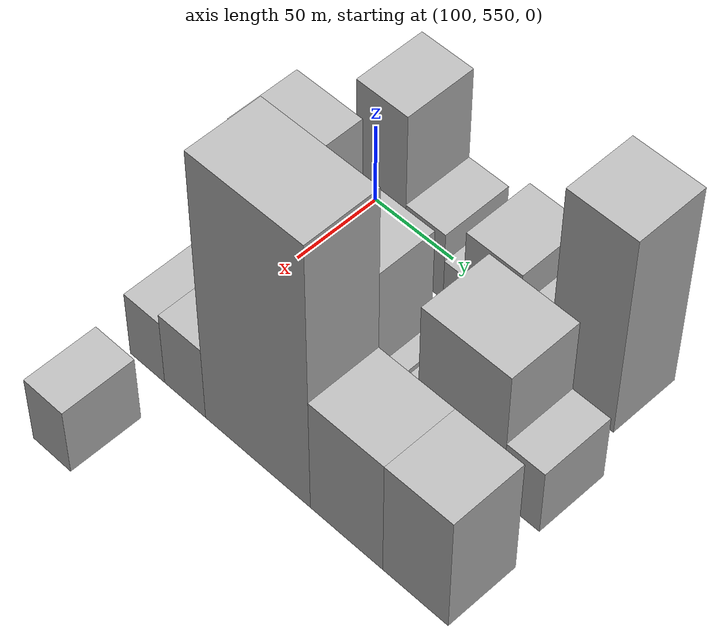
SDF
<sdf version="1.6">
 <world name="default">
  <model name="building_40">
   <static>1</static>
   <pose>100.0000 537.1029 0 0.000000 0.000000 0.000000</pose>
   <link name="link">
    <pose>0 0 7.50 0 0 0</pose>
    <collision name="collision"><geometry><box><size>40.0000 6.2136 15.0000</size></box></geometry></collision>
    <visual name="visual">
     <cast_shadows>0</cast_shadows>
     <geometry><box><size>40.0000 6.2136 15.0000</size></box></geometry>
     <material>
      <script>
       <uri>model://HANNAS_wall/materials/scripts</uri>
       <uri>model://HANNAS_wall/materials/textures</uri>
       <name>vrc/HANNAS_wall</name>
      </script>
     </material>
    </visual>
   </link>
  </model>
  <model name="building_41">
   <static>1</static>
   <pose>100.0000 551.9933 0 0.000000 0.000000 0.000000</pose>
   <link name="link">
    <pose>0 0 13.50 0 0 0</pose>
    <collision name="collision"><geometry><box><size>40.0000 11.5673 27.0000</size></box></geometry></collision>
    <visual name="visual">
     <cast_shadows>0</cast_shadows>
     <geometry><box><size>40.0000 11.5673 27.0000</size></box></geometry>
     <material>
      <script>
       <uri>model://HANNAS_wall/materials/scripts</uri>
       <uri>model://HANNAS_wall/materials/textures</uri>
       <name>vrc/HANNAS_wall</name>
      </script>
     </material>
    </visual>
   </link>
  </model>
  <model name="building_42">
   <static>1</static>
   <pose>100.0000 573.2846 0 0.000000 0.000000 0.000000</pose>
   <link name="link">
    <pose>0 0 51.00 0 0 0</pose>
    <collision name="collision"><geometry><box><size>40.0000 31.0153 102.0000</size></box></geometry></collision>
    <visual name="visual">
     <cast_shadows>0</cast_shadows>
     <geometry><box><size>40.0000 31.0153 102.0000</size></box></geometry>
     <material>
      <script>
       <uri>model://HANNAS_wall/materials/scripts</uri>
       <uri>model://HANNAS_wall/materials/textures</uri>
       <name>vrc/HANNAS_wall</name>
      </script>
     </material>
    </visual>
   </link>
  </model>
  <model name="building_43">
   <static>1</static>
   <pose>100.0000 600.9570 0 0.000000 0.000000 0.000000</pose>
   <link name="link">
    <pose>0 0 22.50 0 0 0</pose>
    <collision name="collision"><geometry><box><size>40.0000 24.3294 45.0000</size></box></geometry></collision>
    <visual name="visual">
     <cast_shadows>0</cast_shadows>
     <geometry><box><size>40.0000 24.3294 45.0000</size></box></geometry>
     <material>
      <script>
       <uri>model://HANNAS_wall/materials/scripts</uri>
       <uri>model://HANNAS_wall/materials/textures</uri>
       <name>vrc/HANNAS_wall</name>
      </script>
     </material>
    </visual>
   </link>
  </model>
  <model name="building_44">
   <static>1</static>
   <pose>100.0000 619.0629 0 0.000000 0.000000 0.000000</pose>
   <link name="link">
    <pose>0 0 13.50 0 0 0</pose>
    <collision name="collision"><geometry><box><size>40.0000 11.8824 27.0000</size></box></geometry></collision>
    <visual name="visual">
     <cast_shadows>0</cast_shadows>
     <geometry><box><size>40.0000 11.8824 27.0000</size></box></geometry>
     <material>
      <script>
       <uri>model://HANNAS_wall/materials/scripts</uri>
       <uri>model://HANNAS_wall/materials/textures</uri>
       <name>vrc/HANNAS_wall</name>
      </script>
     </material>
    </visual>
   </link>
  </model>
  <model name="building_45">
   <static>1</static>
   <pose>100.0000 641.6522 0 0.000000 0.000000 0.000000</pose>
   <link name="link">
    <pose>0 0 28.50 0 0 0</pose>
    <collision name="collision"><geometry><box><size>40.0000 33.2962 57.0000</size></box></geometry></collision>
    <visual name="visual">
     <cast_shadows>0</cast_shadows>
     <geometry><box><size>40.0000 33.2962 57.0000</size></box></geometry>
     <material>
      <script>
       <uri>model://HANNAS_wall/materials/scripts</uri>
       <uri>model://HANNAS_wall/materials/textures</uri>
       <name>vrc/HANNAS_wall</name>
      </script>
     </material>
    </visual>
   </link>
  </model>
  <model name="building_46">
   <static>1</static>
   <pose>100.0000 667.4496 0 0.000000 0.000000 0.000000</pose>
   <link name="link">
    <pose>0 0 18.00 0 0 0</pose>
    <collision name="collision"><geometry><box><size>40.0000 18.2986 36.0000</size></box></geometry></collision>
    <visual name="visual">
     <cast_shadows>0</cast_shadows>
     <geometry><box><size>40.0000 18.2986 36.0000</size></box></geometry>
     <material>
      <script>
       <uri>model://HANNAS_wall/materials/scripts</uri>
       <uri>model://HANNAS_wall/materials/textures</uri>
       <name>vrc/HANNAS_wall</name>
      </script>
     </material>
    </visual>
   </link>
  </model>
  <model name="building_47">
   <static>1</static>
   <pose>100.0000 696.1448 0 0.000000 0.000000 0.000000</pose>
   <link name="link">
    <pose>0 0 64.50 0 0 0</pose>
    <collision name="collision"><geometry><box><size>40.0000 39.0918 129.0000</size></box></geometry></collision>
    <visual name="visual">
     <cast_shadows>0</cast_shadows>
     <geometry><box><size>40.0000 39.0918 129.0000</size></box></geometry>
     <material>
      <script>
       <uri>model://HANNAS_wall/materials/scripts</uri>
       <uri>model://HANNAS_wall/materials/textures</uri>
       <name>vrc/HANNAS_wall</name>
      </script>
     </material>
    </visual>
   </link>
  </model>
  <model name="building_95">
   <static>1</static>
   <pose>160.0000 562.0030 0 0.000000 0.000000 0.000000</pose>
   <link name="link">
    <pose>0 0 55.50 0 0 0</pose>
    <collision name="collision"><geometry><box><size>40.0000 39.6270 111.0000</size></box></geometry></collision>
    <visual name="visual">
     <cast_shadows>0</cast_shadows>
     <geometry><box><size>40.0000 39.6270 111.0000</size></box></geometry>
     <material>
      <script>
       <uri>model://HANNAS_wall/materials/scripts</uri>
       <uri>model://HANNAS_wall/materials/textures</uri>
       <name>vrc/HANNAS_wall</name>
      </script>
     </material>
    </visual>
   </link>
  </model>
  <model name="building_96">
   <static>1</static>
   <pose>160.0000 603.4719 0 0.000000 0.000000 0.000000</pose>
   <link name="link">
    <pose>0 0 37.50 0 0 0</pose>
    <collision name="collision"><geometry><box><size>40.0000 43.3110 75.0000</size></box></geometry></collision>
    <visual name="visual">
     <cast_shadows>0</cast_shadows>
     <geometry><box><size>40.0000 43.3110 75.0000</size></box></geometry>
     <material>
      <script>
       <uri>model://HANNAS_wall/materials/scripts</uri>
       <uri>model://HANNAS_wall/materials/textures</uri>
       <name>vrc/HANNAS_wall</name>
      </script>
     </material>
    </visual>
   </link>
  </model>
  <model name="building_97">
   <static>1</static>
   <pose>160.0000 638.6097 0 0.000000 0.000000 0.000000</pose>
   <link name="link">
    <pose>0 0 13.50 0 0 0</pose>
    <collision name="collision"><geometry><box><size>40.0000 10.9646 27.0000</size></box></geometry></collision>
    <visual name="visual">
     <cast_shadows>0</cast_shadows>
     <geometry><box><size>40.0000 10.9646 27.0000</size></box></geometry>
     <material>
      <script>
       <uri>model://HANNAS_wall/materials/scripts</uri>
       <uri>model://HANNAS_wall/materials/textures</uri>
       <name>vrc/HANNAS_wall</name>
      </script>
     </material>
    </visual>
   </link>
  </model>
  <model name="building_98">
   <static>1</static>
   <pose>160.0000 650.0117 0 0.000000 0.000000 0.000000</pose>
   <link name="link">
    <pose>0 0 12.00 0 0 0</pose>
    <collision name="collision"><geometry><box><size>40.0000 11.8394 24.0000</size></box></geometry></collision>
    <visual name="visual">
     <cast_shadows>0</cast_shadows>
     <geometry><box><size>40.0000 11.8394 24.0000</size></box></geometry>
     <material>
      <script>
       <uri>model://HANNAS_wall/materials/scripts</uri>
       <uri>model://HANNAS_wall/materials/textures</uri>
       <name>vrc/HANNAS_wall</name>
      </script>
     </material>
    </visual>
   </link>
  </model>
  <model name="building_99">
   <static>1</static>
   <pose>160.0000 681.1576 0 0.000000 0.000000 0.000000</pose>
   <link name="link">
    <pose>0 0 43.50 0 0 0</pose>
    <collision name="collision"><geometry><box><size>40.0000 50.4524 87.0000</size></box></geometry></collision>
    <visual name="visual">
     <cast_shadows>0</cast_shadows>
     <geometry><box><size>40.0000 50.4524 87.0000</size></box></geometry>
     <material>
      <script>
       <uri>model://HANNAS_wall/materials/scripts</uri>
       <uri>model://HANNAS_wall/materials/textures</uri>
       <name>vrc/HANNAS_wall</name>
      </script>
     </material>
    </visual>
   </link>
  </model>
  <model name="building_100">
   <static>1</static>
   <pose>160.0000 717.1385 0 0.000000 0.000000 0.000000</pose>
   <link name="link">
    <pose>0 0 21.00 0 0 0</pose>
    <collision name="collision"><geometry><box><size>40.0000 21.5093 42.0000</size></box></geometry></collision>
    <visual name="visual">
     <cast_shadows>0</cast_shadows>
     <geometry><box><size>40.0000 21.5093 42.0000</size></box></geometry>
     <material>
      <script>
       <uri>model://HANNAS_wall/materials/scripts</uri>
       <uri>model://HANNAS_wall/materials/textures</uri>
       <name>vrc/HANNAS_wall</name>
      </script>
     </material>
    </visual>
   </link>
  </model>
  <model name="building_151">
   <static>1</static>
   <pose>220.0000 548.6387 0 0.000000 0.000000 0.000000</pose>
   <link name="link">
    <pose>0 0 21.00 0 0 0</pose>
    <collision name="collision"><geometry><box><size>40.0000 22.6276 42.0000</size></box></geometry></collision>
    <visual name="visual">
     <cast_shadows>0</cast_shadows>
     <geometry><box><size>40.0000 22.6276 42.0000</size></box></geometry>
     <material>
      <script>
       <uri>model://HANNAS_wall/materials/scripts</uri>
       <uri>model://HANNAS_wall/materials/textures</uri>
       <name>vrc/HANNAS_wall</name>
      </script>
     </material>
    </visual>
   </link>
  </model>
  <model name="building_152">
   <static>1</static>
   <pose>220.0000 573.1847 0 0.000000 0.000000 0.000000</pose>
   <link name="link">
    <pose>0 0 24.00 0 0 0</pose>
    <collision name="collision"><geometry><box><size>40.0000 26.4643 48.0000</size></box></geometry></collision>
    <visual name="visual">
     <cast_shadows>0</cast_shadows>
     <geometry><box><size>40.0000 26.4643 48.0000</size></box></geometry>
     <material>
      <script>
       <uri>model://HANNAS_wall/materials/scripts</uri>
       <uri>model://HANNAS_wall/materials/textures</uri>
       <name>vrc/HANNAS_wall</name>
      </script>
     </material>
    </visual>
   </link>
  </model>
  <model name="building_153">
   <static>1</static>
   <pose>220.0000 619.1308 0 0.000000 0.000000 0.000000</pose>
   <link name="link">
    <pose>0 0 87.00 0 0 0</pose>
    <collision name="collision"><geometry><box><size>40.0000 65.4278 174.0000</size></box></geometry></collision>
    <visual name="visual">
     <cast_shadows>0</cast_shadows>
     <geometry><box><size>40.0000 65.4278 174.0000</size></box></geometry>
     <material>
      <script>
       <uri>model://HANNAS_wall/materials/scripts</uri>
       <uri>model://HANNAS_wall/materials/textures</uri>
       <name>vrc/HANNAS_wall</name>
      </script>
     </material>
    </visual>
   </link>
  </model>
  <model name="building_154">
   <static>1</static>
   <pose>220.0000 673.4292 0 0.000000 0.000000 0.000000</pose>
   <link name="link">
    <pose>0 0 37.50 0 0 0</pose>
    <collision name="collision"><geometry><box><size>40.0000 43.1692 75.0000</size></box></geometry></collision>
    <visual name="visual">
     <cast_shadows>0</cast_shadows>
     <geometry><box><size>40.0000 43.1692 75.0000</size></box></geometry>
     <material>
      <script>
       <uri>model://HANNAS_wall/materials/scripts</uri>
       <uri>model://HANNAS_wall/materials/textures</uri>
       <name>vrc/HANNAS_wall</name>
      </script>
     </material>
    </visual>
   </link>
  </model>
  <model name="building_155">
   <static>1</static>
   <pose>220.0000 713.9560 0 0.000000 0.000000 0.000000</pose>
   <link name="link">
    <pose>0 0 37.50 0 0 0</pose>
    <collision name="collision"><geometry><box><size>40.0000 37.8844 75.0000</size></box></geometry></collision>
    <visual name="visual">
     <cast_shadows>0</cast_shadows>
     <geometry><box><size>40.0000 37.8844 75.0000</size></box></geometry>
     <material>
      <script>
       <uri>model://HANNAS_wall/materials/scripts</uri>
       <uri>model://HANNAS_wall/materials/textures</uri>
       <name>vrc/HANNAS_wall</name>
      </script>
     </material>
    </visual>
   </link>
  </model>
  <model name="building_201">
   <static>1</static>
   <pose>280.0000 554.5519 0 0.000000 0.000000 0.000000</pose>
   <link name="link">
    <pose>0 0 21.00 0 0 0</pose>
    <collision name="collision"><geometry><box><size>40.0000 24.5430 42.0000</size></box></geometry></collision>
    <visual name="visual">
     <cast_shadows>0</cast_shadows>
     <geometry><box><size>40.0000 24.5430 42.0000</size></box></geometry>
     <material>
      <script>
       <uri>model://HANNAS_wall/materials/scripts</uri>
       <uri>model://HANNAS_wall/materials/textures</uri>
       <name>vrc/HANNAS_wall</name>
      </script>
     </material>
    </visual>
   </link>
  </model>
 </world>
</sdf>
